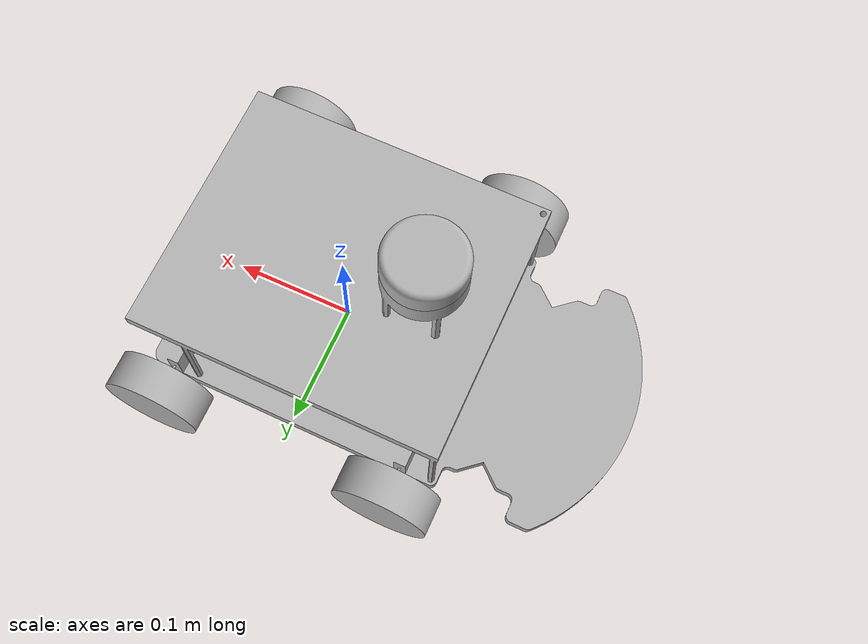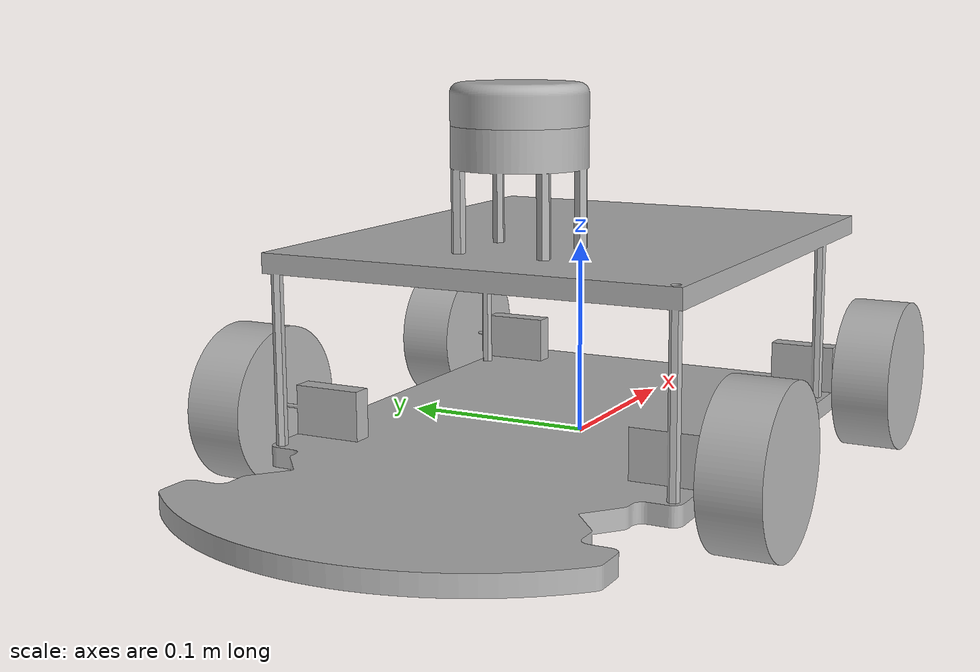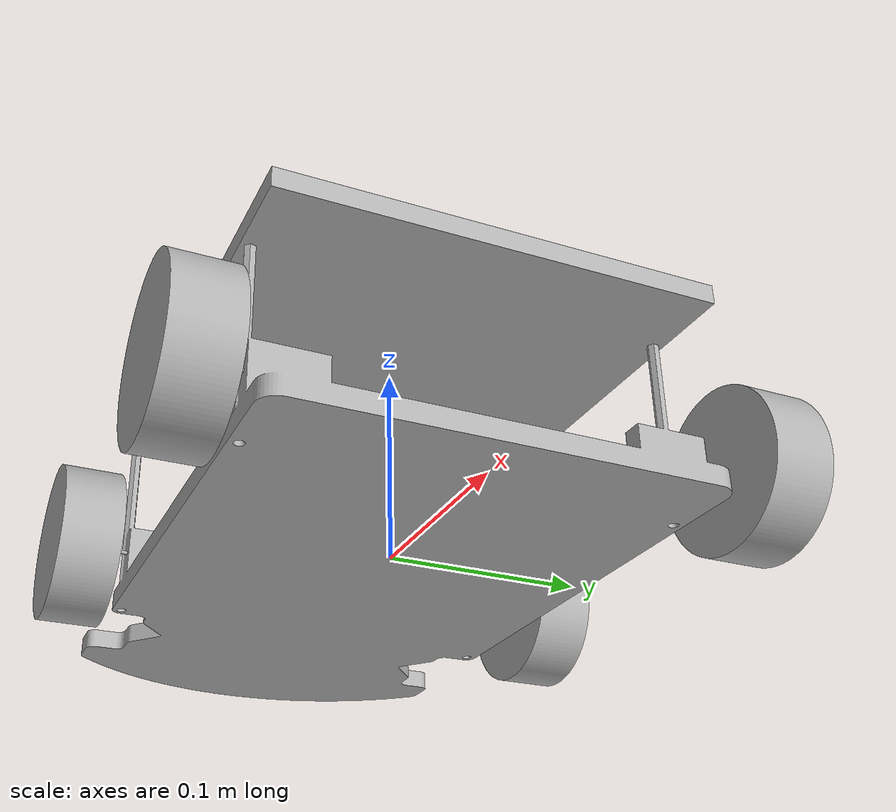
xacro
<?xml version="1.0" ?>
<robot name="fourWheelCar" xmlns:xacro="http://www.ros.org/wiki/xacro">

<xacro:include filename="$(find fourWheelCar_description)/urdf/materials.xacro" />
<xacro:include filename="$(find fourWheelCar_description)/urdf/fourWheelCar.trans" />
<xacro:include filename="$(find fourWheelCar_description)/urdf/fourWheelCar.gazebo" />
<link name="base_link">
  <inertial>
    <origin xyz="-0.031141049832366353 9.242377183248719e-06 0.050011490590469526" rpy="0 0 0"/>
    <mass value="11.13582814957309"/>
    <inertia ixx="0.069638" iyy="0.130358" izz="0.141493" ixy="1.4e-05" iyz="-4e-06" ixz="-0.009844"/>
  </inertial>
  <visual>
    <origin xyz="0 0 0" rpy="0 0 0"/>
    <geometry>
      <mesh filename="package://fourWheelCar_description/meshes/base_link.stl" scale="0.001 0.001 0.001"/>
    </geometry>
    <material name="silver"/>
  </visual>
  <collision>
    <origin xyz="0 0 0" rpy="0 0 0"/>
    <geometry>
      <mesh filename="package://fourWheelCar_description/meshes/base_link.stl" scale="0.001 0.001 0.001"/>
    </geometry>
  </collision>
</link>

<link name="wheel_v1_1">
  <inertial>
    <origin xyz="-1.3877787807814457e-17 -0.015000000000000041 0.0" rpy="0 0 0"/>
    <mass value="1.1837521118726337"/>
    <inertia ixx="0.000562" iyy="0.000947" izz="0.000562" ixy="-0.0" iyz="-0.0" ixz="-0.0"/>
  </inertial>
  <visual>
    <origin xyz="-0.1025 0.1175 -0.0225" rpy="0 0 0"/>
    <geometry>
      <mesh filename="package://fourWheelCar_description/meshes/wheel_v1_1.stl" scale="0.001 0.001 0.001"/>
    </geometry>
    <material name="silver"/>
  </visual>
  <collision>
    <origin xyz="-0.1025 0.1175 -0.0225" rpy="0 0 0"/>
    <geometry>
      <mesh filename="package://fourWheelCar_description/meshes/wheel_v1_1.stl" scale="0.001 0.001 0.001"/>
    </geometry>
  </collision>
</link>

<link name="wheel_v1__1__1">
  <inertial>
    <origin xyz="-1.3877787807814457e-17 0.014999999999999958 0.0" rpy="0 0 0"/>
    <mass value="1.1837521118726337"/>
    <inertia ixx="0.000562" iyy="0.000947" izz="0.000562" ixy="0.0" iyz="-0.0" ixz="0.0"/>
  </inertial>
  <visual>
    <origin xyz="-0.1025 -0.1175 -0.0225" rpy="0 0 0"/>
    <geometry>
      <mesh filename="package://fourWheelCar_description/meshes/wheel_v1__1__1.stl" scale="0.001 0.001 0.001"/>
    </geometry>
    <material name="silver"/>
  </visual>
  <collision>
    <origin xyz="-0.1025 -0.1175 -0.0225" rpy="0 0 0"/>
    <geometry>
      <mesh filename="package://fourWheelCar_description/meshes/wheel_v1__1__1.stl" scale="0.001 0.001 0.001"/>
    </geometry>
  </collision>
</link>

<link name="wheel_v1__2__1">
  <inertial>
    <origin xyz="-1.3877787807814457e-17 -0.015000000000000041 3.122502256758253e-17" rpy="0 0 0"/>
    <mass value="1.1837521118726337"/>
    <inertia ixx="0.000562" iyy="0.000947" izz="0.000562" ixy="0.0" iyz="0.0" ixz="-0.0"/>
  </inertial>
  <visual>
    <origin xyz="0.0975 0.1175 -0.0225" rpy="0 0 0"/>
    <geometry>
      <mesh filename="package://fourWheelCar_description/meshes/wheel_v1__2__1.stl" scale="0.001 0.001 0.001"/>
    </geometry>
    <material name="silver"/>
  </visual>
  <collision>
    <origin xyz="0.0975 0.1175 -0.0225" rpy="0 0 0"/>
    <geometry>
      <mesh filename="package://fourWheelCar_description/meshes/wheel_v1__2__1.stl" scale="0.001 0.001 0.001"/>
    </geometry>
  </collision>
</link>

<link name="wheel_v1__3__1">
  <inertial>
    <origin xyz="-1.3877787807814457e-17 0.014999999999999958 3.469446951953614e-17" rpy="0 0 0"/>
    <mass value="1.1837521118726337"/>
    <inertia ixx="0.000562" iyy="0.000947" izz="0.000562" ixy="0.0" iyz="-0.0" ixz="0.0"/>
  </inertial>
  <visual>
    <origin xyz="0.0975 -0.1175 -0.0225" rpy="0 0 0"/>
    <geometry>
      <mesh filename="package://fourWheelCar_description/meshes/wheel_v1__3__1.stl" scale="0.001 0.001 0.001"/>
    </geometry>
    <material name="silver"/>
  </visual>
  <collision>
    <origin xyz="0.0975 -0.1175 -0.0225" rpy="0 0 0"/>
    <geometry>
      <mesh filename="package://fourWheelCar_description/meshes/wheel_v1__3__1.stl" scale="0.001 0.001 0.001"/>
    </geometry>
  </collision>
</link>

<link name="lidar_v1_1">
  <inertial>
    <origin xyz="-1.0058283789193823e-09 0.0 0.009858499938735416" rpy="0 0 0"/>
    <mass value="0.5286905929941373"/>
    <inertia ixx="0.000159" iyy="0.000159" izz="0.000284" ixy="-0.0" iyz="-0.0" ixz="0.0"/>
  </inertial>
  <visual>
    <origin xyz="0.0675 -0.0 -0.165" rpy="0 0 0"/>
    <geometry>
      <mesh filename="package://fourWheelCar_description/meshes/lidar_v1_1.stl" scale="0.001 0.001 0.001"/>
    </geometry>
    <material name="silver"/>
  </visual>
  <collision>
    <origin xyz="0.0675 -0.0 -0.165" rpy="0 0 0"/>
    <geometry>
      <mesh filename="package://fourWheelCar_description/meshes/lidar_v1_1.stl" scale="0.001 0.001 0.001"/>
    </geometry>
  </collision>
</link>

<joint name="Revolute 1" type="continuous">
  <origin xyz="0.1025 -0.1175 0.0225" rpy="0 0 0"/>
  <parent link="base_link"/>
  <child link="wheel_v1_1"/>
  <axis xyz="0.0 -1.0 0.0"/>
</joint>

<joint name="Revolute 2" type="continuous">
  <origin xyz="0.1025 0.1175 0.0225" rpy="0 0 0"/>
  <parent link="base_link"/>
  <child link="wheel_v1__1__1"/>
  <axis xyz="0.0 1.0 0.0"/>
</joint>

<joint name="Revolute 3" type="continuous">
  <origin xyz="-0.0975 -0.1175 0.0225" rpy="0 0 0"/>
  <parent link="base_link"/>
  <child link="wheel_v1__2__1"/>
  <axis xyz="0.0 -1.0 0.0"/>
</joint>

<joint name="Revolute 4" type="continuous">
  <origin xyz="-0.0975 0.1175 0.0225" rpy="0 0 0"/>
  <parent link="base_link"/>
  <child link="wheel_v1__3__1"/>
  <axis xyz="0.0 1.0 0.0"/>
</joint>

<joint name="Rigid 5" type="fixed">
  <origin xyz="-0.0675 0.0 0.165" rpy="0 0 0"/>
  <parent link="base_link"/>
  <child link="lidar_v1_1"/>
</joint>

</robot>

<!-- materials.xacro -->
<robot name="fourWheelCar" xmlns:xacro="http://www.ros.org/wiki/xacro" >

<material name="silver">
  <color rgba="0.700 0.700 0.700 1.000"/>
</material>

</robot>

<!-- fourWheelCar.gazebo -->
<robot name="fourWheelCar" xmlns:xacro="http://www.ros.org/wiki/xacro" >

<xacro:property name="body_color" value="Gazebo/Silver" />

<gazebo>
  <plugin name="control" filename="libgazebo_ros_control.so"/>
</gazebo>
<gazebo reference="base_link">
  <material>${body_color}</material>
  <mu1>0.2</mu1>
  <mu2>0.2</mu2>
  <selfCollide>true</selfCollide>
  <gravity>true</gravity>
</gazebo>

<gazebo reference="wheel_v1_1">
  <material>${body_color}</material>
  <mu1>0.2</mu1>
  <mu2>0.2</mu2>
  <selfCollide>true</selfCollide>
</gazebo>

<gazebo reference="wheel_v1__1__1">
  <material>${body_color}</material>
  <mu1>0.2</mu1>
  <mu2>0.2</mu2>
  <selfCollide>true</selfCollide>
</gazebo>

<gazebo reference="wheel_v1__2__1">
  <material>${body_color}</material>
  <mu1>0.2</mu1>
  <mu2>0.2</mu2>
  <selfCollide>true</selfCollide>
</gazebo>

<gazebo reference="wheel_v1__3__1">
  <material>${body_color}</material>
  <mu1>0.2</mu1>
  <mu2>0.2</mu2>
  <selfCollide>true</selfCollide>
</gazebo>

<gazebo reference="lidar_v1_1">
  <material>${body_color}</material>
  <mu1>0.2</mu1>
  <mu2>0.2</mu2>
  <selfCollide>true</selfCollide>
</gazebo>

</robot>
